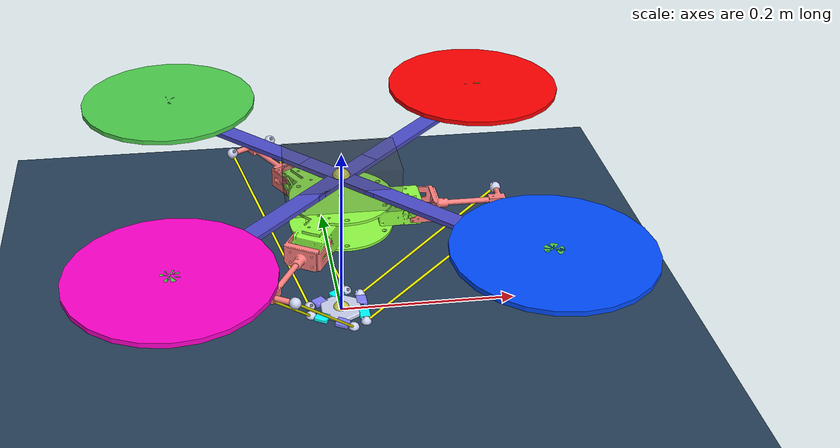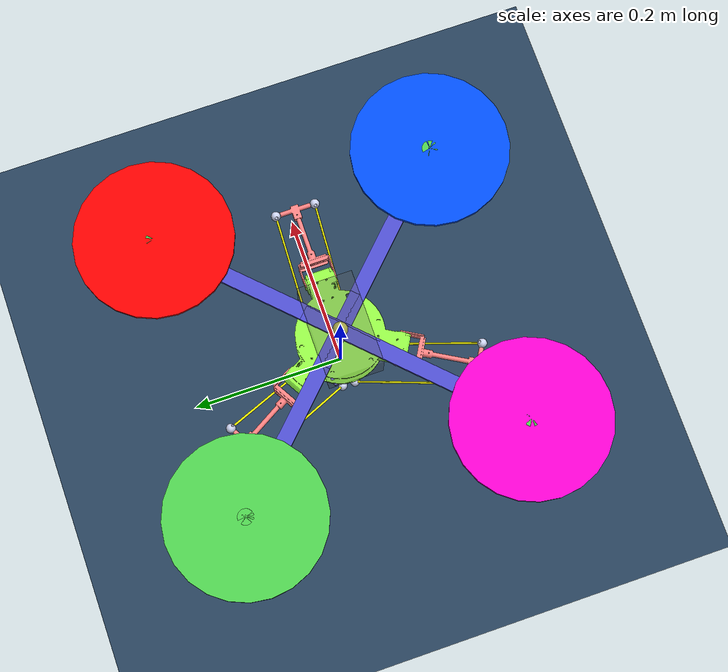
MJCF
<mujoco model="Delta">
  <compiler angle="radian" meshdir="assets"/>
  <option timestep="0.0001" gravity="0 0 -9.81" integrator="implicit" iterations="100" density="1" viscosity="1e-5"/>

  <default>
    <joint type="hinge" frictionloss="0.0001" damping='0.00005' limited="true" range="-3.14 3.14"/>
    <position ctrllimited="false" forcelimited="false"  kp="100" kv="10"/>
  </default>

  <asset>
    <mesh name="base_link" file="base_link.STL"/>
    <mesh name="motor_arm_link1" file="motor_arm_link1.STL"/>
    <mesh name="right_elbow_link1" file="right_elbow_link1.STL"/>
    <mesh name="right_arm_link1" file="right_arm_link1.STL"/>
    <mesh name="right_hinge_link1" file="right_hinge_link1.STL"/>
    <mesh name="right_end_link1" file="right_end_link1.STL"/>
    <mesh name="left_elbow_link1" file="left_elbow_link1.STL"/>
    <mesh name="left_arm_link1" file="left_arm_link1.STL"/>
    <mesh name="left_hinge_link1" file="left_hinge_link1.STL"/>
    <mesh name="left_end_link1" file="left_end_link1.STL"/>
    <mesh name="end_platform" file="end_platform.STL"/>
    <mesh name="motor_arm_link2" file="motor_arm_link2.STL"/>
    <mesh name="right_elbow_link2" file="right_elbow_link2.STL"/>
    <mesh name="right_arm_link2" file="right_arm_link2.STL"/>
    <mesh name="right_hinge_link2" file="right_hinge_link2.STL"/>
    <mesh name="right_end_link2" file="right_end_link2.STL"/>
    <mesh name="left_elbow_link2" file="left_elbow_link2.STL"/>
    <mesh name="left_arm_link2" file="left_arm_link2.STL"/>
    <mesh name="left_hinge_link2" file="left_hinge_link2.STL"/>
    <mesh name="left_end_link2" file="left_end_link2.STL"/>
    <mesh name="motor_arm_link3" file="motor_arm_link3.STL"/>
    <mesh name="right_elbow_link3" file="right_elbow_link3.STL"/>
    <mesh name="right_arm_link3" file="right_arm_link3.STL"/>
    <mesh name="right_hinge_link3" file="right_hinge_link3.STL"/>
    <mesh name="right_end_link3" file="right_end_link3.STL"/>
    <mesh name="left_elbow_link3" file="left_elbow_link3.STL"/>
    <mesh name="left_arm_link3" file="left_arm_link3.STL"/>
    <mesh name="left_hinge_link3" file="left_hinge_link3.STL"/>
    <mesh name="left_end_link3" file="left_end_link3.STL"/>
    <texture name="grid" type="2d" builtin="checker" rgb1=".1 .2 .3" rgb2=".2 .3 .4" width="100" height="100"/>
    <material name="grid" texture="grid" texrepeat="5 5" reflectance="0.0"/>
  </asset>

  <worldbody>
    <!-- This is the floor. -->
    <geom pos="0 0 0" size="0 0 0.05" type="plane" material="grid"/>

    <light pos="0 0 10."/>

    <body name="UAV_Delta_platform" pos="0 0 0.13271" quat = "1. 0. 0. 0">
      <freejoint />
      <body name="UAV_body" pos="0 0 0.04" quat = "1. 0. 0. 0">
        <site name="imu"/>
        <site name="UAV_center" pos=" 0 0 0"  size="0.01"  quat = "1.0 0.0 0.0 0." rgba="0.8 0.8 0.3 1"/>
        <geom name="core" type="box" pos="0 0 0" quat = "1. 0. 0. 0" size="0.06 0.035 0.025"  rgba="0.3 0.3 0.3 0.3" mass = ".2"/>
        <geom name="a00" type="box" pos=".071 0.071 0" size="0.15 0.01 0.0025"  quat = ".924 0.0 0.0 0.383" rgba="0.3 0.3 0.8 1" mass = ".025"/>
        <geom name="a10" type="box" pos=".071 -0.071 0" size="0.15 0.01 0.0025"  quat = ".383 0.0 0.0 0.924" rgba="0.3 0.3 0.8 1" mass = ".025"/>
        <geom name="a20" type="box" pos="-0.071 -0.071 0" size="0.15 0.01 0.0025"  quat = "-.383 0.0 0.0 0.924" rgba="0.3 0.3 0.8 1" mass = ".025"/>
        <geom name="a30" type="box" pos="-.071 0.071 0" size="0.15 0.01 0.0025"  quat = ".924 0.0 0.0 -0.383" rgba="0.3 0.3 0.8 1" mass = ".025"/>

        <site name="motor1" type="cylinder" pos=" 0.18  0.18 0.01"  size="0.01 0.0025"  quat = "1.0 0.0 0.0 0." rgba="0.3 0.8 0.3 1"/>
        <site name="motor2" type="cylinder" pos=" 0.18 -0.18 0.01"  size="0.01 0.0025"  quat = "1.0 0.0 0.0 0." rgba="0.3 0.8 0.3 1"/>
        <site name="motor3" type="cylinder" pos="-0.18 -0.18 0.01"  size="0.01 0.0025"  quat = "1.0 0.0 0.0 0." rgba="0.3 0.8 0.3 1"/>
        <site name="motor4" type="cylinder" pos="-0.18  0.18 0.01"  size="0.01 0.0025"  quat = "1.0 0.0 0.0 0." rgba="0.3 0.8 0.3 1"/>

        <!-- Thruster geometries for collisions since site's are excluded from collision checking -->
        <geom name="prop1" type="cylinder" pos=" 0.18  0.18  0.01" size="0.1 0.0025"  quat = "1.0 0.0 0.0 0." rgba="1 0 0 1" mass = ".025"/>
        <geom name="prop2" type="cylinder" pos=" 0.18  -0.18  0.01" size="0.1 0.0025"  quat = "1.0 0.0 0.0 0." rgba="0 0.3 1 1" mass = ".025"/>
        <geom name="prop3" type="cylinder" pos=" -0.18  -0.18  0.01" size="0.1 0.0025"  quat = "1.0 0.0 0.0 0." rgba="1 0 0.8 1" mass = ".025"/>
        <geom name="prop4" type="cylinder" pos=" -0.18  0.18  0.01" size="0.1 0.0025"  quat = "1.0 0.0 0.0 0." rgba="0.3 0.8 0.3 1" mass = ".025"/>
      </body>
      <camera name="track" pos="0 -1. .3" xyaxes="1 0 0 0 1 2" mode="track"/>
      <body name="Delta_base_body">
        <site name="Delta_base_center" pos=" 0 0 0"  size="0.01"  quat = "1.0 0.0 0.0 0." rgba="0.8 0.8 0.3 1"/>
        <geom type="mesh" contype="0" conaffinity="0" group="1" density="1" rgba="0.57255 1 0.27059 1" mesh="base_link"/>
        <geom type="mesh" rgba="0.57255 1 0.27059 1" mesh="base_link"/>
      </body>
      <body name="motor_arm_link1" pos="0.074577 0 0">
        <inertial pos="0.048659 4.3413e-11 -3.3963e-09" quat="0.5 0.5 -0.5 0.5" mass="0.0086736" diaginertia="1.9546e-06 1.2676e-06 1.1572e-06"/>
        <joint name="motor_arm_joint1" pos="0 0 0" axis="0 -1 0" damping='10'/>
        <geom type="mesh" contype="0" conaffinity="0" group="1" density="1" rgba="1 0.50196 0.50196 1" mesh="motor_arm_link1"/>
        <geom type="mesh" rgba="1 0.50196 0.50196 1" mesh="motor_arm_link1"/>
        <body name="right_elbow_link1" pos="0.1 0.026 0" quat="0.644891 0.290023 0.290025 0.644893">
          <inertial pos="-0.00098819 3.0494e-10 -4.6362e-09" quat="0.5 0.5 0.5 0.5" mass="0.00085837" diaginertia="2.0402e-08 1.8973e-08 1.153e-08"/>
          <joint name="right_elbow_joint1" pos="0 0 0" axis="-1 0 0"  />
          <geom type="mesh" contype="0" conaffinity="0" group="1" density="1" rgba="0.79216 0.81961 0.93333 1" mesh="right_elbow_link1"/>
          <geom type="mesh" rgba="0.79216 0.81961 0.93333 1" mesh="right_elbow_link1"/>
          <body name="right_arm_link1">
            <inertial pos="-8.6914e-09 0 -0.1" quat="0.707107 0 0 0.707107" mass="0.0075206" diaginertia="4.0858e-06 4.085e-06 2.4932e-09"/>
            <joint name="right_arm_joint1" pos="0 0 0" axis="0 -1 0"  />
            <geom type="mesh" contype="0" conaffinity="0" group="1" density="1" rgba="1 1 0 1" mesh="right_arm_link1"/>
            <geom type="mesh" rgba="1 1 0 1" mesh="right_arm_link1"/>
            <body name="right_hinge_link1" pos="0 0 -0.2">
              <inertial pos="-0.00098819 -3.0494e-10 4.6362e-09" quat="0.5 0.5 0.5 0.5" mass="0.00085837" diaginertia="2.0402e-08 1.8973e-08 1.153e-08"/>
              <joint name="right_hinge_joint1" pos="0 0 0" axis="0 1 0"  />
              <geom type="mesh" contype="0" conaffinity="0" group="1" density="1" rgba="0.79216 0.81961 0.93333 1" mesh="right_hinge_link1"/>
              <geom type="mesh" rgba="0.79216 0.81961 0.93333 1" mesh="right_hinge_link1"/>
              <body name="right_end_link1">
                <inertial pos="-0.013549 4.0775e-05 -4.5973e-05" quat="0.306307 0.63732 0.273553 0.65205" mass="0.0012596" diaginertia="3.85901e-08 2.95879e-08 2.3009e-08"/>
                <joint name="right_end_joint1" pos="0 0 0" axis="-1 0 0"  />
                <geom type="mesh" contype="0" conaffinity="0" group="1" density="1" rgba="0.50196 0.50196 1 1" mesh="right_end_link1"/>
                <geom type="mesh" rgba="0.50196 0.50196 1 1" mesh="right_end_link1"/>
              </body>
            </body>
          </body>
        </body>
        <body name="left_elbow_link1" pos="0.1 -0.026 0" quat="0.644891 0.290023 0.290025 0.644893">
          <inertial pos="0.00098819 3.0494e-10 4.6362e-09" quat="0.5 0.5 0.5 0.5" mass="0.00085837" diaginertia="2.0402e-08 1.8973e-08 1.153e-08"/>
          <joint name="left_elbow_joint1" pos="0 0 0" axis="1 0 0"/>
          <geom type="mesh" contype="0" conaffinity="0" group="1" density="1" rgba="0.79216 0.81961 0.93333 1" mesh="left_elbow_link1"/>
          <geom type="mesh" rgba="0.79216 0.81961 0.93333 1" mesh="left_elbow_link1"/>
          <body name="left_arm_link1">
            <inertial pos="-8.6914e-09 0 -0.1" quat="0.707107 0 0 0.707107" mass="0.0075206" diaginertia="4.0858e-06 4.085e-06 2.4932e-09"/>
            <joint name="left_arm_joint1" pos="0 0 0" axis="0 -1 0"/>
            <geom type="mesh" contype="0" conaffinity="0" group="1" density="1" rgba="1 1 0 1" mesh="left_arm_link1"/>
            <geom type="mesh" rgba="1 1 0 1" mesh="left_arm_link1"/>
            <body name="left_hinge_link1" pos="0 0 -0.2">
              <inertial pos="0.00098819 3.0494e-10 4.6362e-09" quat="0.5 0.5 0.5 0.5" mass="0.00085837" diaginertia="2.0402e-08 1.8973e-08 1.153e-08"/>
              <joint name="left_hinge_joint1" pos="0 0 0" axis="0 -1 0"/>
              <geom type="mesh" contype="0" conaffinity="0" group="1" density="1" rgba="0.79216 0.81961 0.93333 1" mesh="left_hinge_link1"/>
              <geom type="mesh" rgba="0.79216 0.81961 0.93333 1" mesh="left_hinge_link1"/>
              <body name="left_end_link1">
                <inertial pos="0.013549 4.0775e-05 -4.5973e-05" quat="0.273553 0.65205 0.306307 0.63732" mass="0.0012596" diaginertia="3.85901e-08 2.95879e-08 2.3009e-08"/>
                <joint name="left_end_joint1" pos="0 0 0" axis="1 0 0"/>
                <geom type="mesh" contype="0" conaffinity="0" group="1" density="1" rgba="0 1 1 1" mesh="left_end_link1"/>
                <geom type="mesh" rgba="0 1 1 1" mesh="left_end_link1"/>
              </body>
            </body>
          </body>
        </body>
      </body>
      <body name="motor_arm_link2" pos="-0.037289 0.064586 0" quat="0.499998 0 0 0.866027">
        <inertial pos="0.048659 -1.1526e-10 -3.1381e-09" quat="0.5 0.5 -0.5 0.5" mass="0.0086736" diaginertia="1.9546e-06 1.2676e-06 1.1572e-06"/>
        <joint name="motor_arm_joint2" pos="0 0 0" axis="0 -1 0" damping='10'/>
        <geom type="mesh" contype="0" conaffinity="0" group="1" density="1" rgba="1 0.50196 0.50196 1" mesh="motor_arm_link2"/>
        <geom type="mesh" rgba="1 0.50196 0.50196 1" mesh="motor_arm_link2"/>
        <body name="right_elbow_link2" pos="0.1 0.026 0" quat="0.644891 0.290023 0.290025 0.644893">
          <inertial pos="-0.00098819 1.6333e-09 -2.2058e-09" quat="0.5 0.5 0.5 0.5" mass="0.00085837" diaginertia="2.0402e-08 1.8973e-08 1.153e-08"/>
          <joint name="right_elbow_joint2" pos="0 0 0" axis="-1 0 0"/>
          <geom type="mesh" contype="0" conaffinity="0" group="1" density="1" rgba="0.79216 0.81961 0.93333 1" mesh="right_elbow_link2"/>
          <geom type="mesh" rgba="0.79216 0.81961 0.93333 1" mesh="right_elbow_link2"/>
          <body name="right_arm_link2">
            <inertial pos="-8.6914e-09 0 -0.1" quat="0.707107 0 0 0.707107" mass="0.0075206" diaginertia="4.0858e-06 4.085e-06 2.4932e-09"/>
            <joint name="right_arm_joint2" pos="0 0 0" axis="0 -1 0"/>
            <geom type="mesh" contype="0" conaffinity="0" group="1" density="1" rgba="1 1 0 1" mesh="right_arm_link2"/>
            <geom type="mesh" rgba="1 1 0 1" mesh="right_arm_link2"/>
            <body name="right_hinge_link2" pos="0 0 -0.2">
              <inertial pos="-0.00098819 9.8853e-10 7.0548e-09" quat="0.5 0.5 0.5 0.5" mass="0.00085837" diaginertia="2.0402e-08 1.8973e-08 1.153e-08"/>
              <joint name="right_hinge_joint2" pos="0 0 0" axis="0 1 0"/>
              <geom type="mesh" contype="0" conaffinity="0" group="1" density="1" rgba="0.79216 0.81961 0.93333 1" mesh="right_hinge_link2"/>
              <geom type="mesh" rgba="0.79216 0.81961 0.93333 1" mesh="right_hinge_link2"/>
              <body name="right_end_link2">
                <inertial pos="-0.013549 4.0775e-05 -4.5973e-05" quat="0.306307 0.63732 0.273553 0.65205" mass="0.0012596" diaginertia="3.85901e-08 2.95879e-08 2.3009e-08"/>
                <joint name="right_end_joint2" pos="0 0 0" axis="-1 0 0"/>
                <geom type="mesh" contype="0" conaffinity="0" group="1" density="1" rgba="0.50196 0.50196 1 1" mesh="right_end_link2"/>
                <geom type="mesh" rgba="0.50196 0.50196 1 1" mesh="right_end_link2"/>
              </body>
            </body>
          </body>
        </body>
        <body name="left_elbow_link2" pos="0.1 -0.026 0" quat="0.644891 0.290023 0.290025 0.644893">
          <inertial pos="0.00098819 -9.7302e-10 2.2002e-09" quat="0.5 0.5 0.5 0.5" mass="0.00085837" diaginertia="2.0402e-08 1.8973e-08 1.153e-08"/>
          <joint name="left_elbow_joint2" pos="0 0 0" axis="1 0 0"/>
          <geom type="mesh" contype="0" conaffinity="0" group="1" density="1" rgba="0.79216 0.81961 0.93333 1" mesh="left_elbow_link2"/>
          <geom type="mesh" rgba="0.79216 0.81961 0.93333 1" mesh="left_elbow_link2"/>
          <body name="left_arm_link2">
            <inertial pos="-8.6914e-09 0 -0.1" quat="0.707107 0 0 0.707107" mass="0.0075206" diaginertia="4.0858e-06 4.085e-06 2.4932e-09"/>
            <joint name="left_arm_joint2" pos="0 0 0" axis="0 -1 0"/>
            <geom type="mesh" contype="0" conaffinity="0" group="1" density="1" rgba="1 1 0 1" mesh="left_arm_link2"/>
            <geom type="mesh" rgba="1 1 0 1" mesh="left_arm_link2"/>
            <body name="left_hinge_link2" pos="0 0 -0.2">
              <inertial pos="0.00098819 -9.7302e-10 2.2002e-09" quat="0.5 0.5 0.5 0.5" mass="0.00085837" diaginertia="2.0402e-08 1.8973e-08 1.153e-08"/>
              <joint name="left_hinge_joint2" pos="0 0 0" axis="0 -1 0"/>
              <geom type="mesh" contype="0" conaffinity="0" group="1" density="1" rgba="0.79216 0.81961 0.93333 1" mesh="left_hinge_link2"/>
              <geom type="mesh" rgba="0.79216 0.81961 0.93333 1" mesh="left_hinge_link2"/>
              <body name="left_end_link2">
                <inertial pos="0.013549 4.0775e-05 -4.5973e-05" quat="0.273553 0.65205 0.306307 0.63732" mass="0.0012596" diaginertia="3.85901e-08 2.95879e-08 2.3009e-08"/>
                <joint name="left_end_joint2" pos="0 0 0" axis="1 0 0"/>
                <geom type="mesh" contype="0" conaffinity="0" group="1" density="1" rgba="0 1 1 1" mesh="left_end_link2"/>
                <geom type="mesh" rgba="0 1 1 1" mesh="left_end_link2"/>
              </body>
            </body>
          </body>
        </body>
      </body>
      <body name="motor_arm_link3" pos="-0.037289 -0.064586 0" quat="0.499998 0 0 -0.866027">
        <inertial pos="0.048659 1.1069e-10 -3.4522e-09" quat="0.5 0.5 -0.5 0.5" mass="0.0086736" diaginertia="1.9546e-06 1.2676e-06 1.1572e-06"/>
        <joint name="motor_arm_joint3" pos="0 0 0" axis="0 -1 0" damping='10'/>
        <geom type="mesh" contype="0" conaffinity="0" group="1" density="1" rgba="1 0.50196 0.50196 1" mesh="motor_arm_link3"/>
        <geom type="mesh" rgba="1 0.50196 0.50196 1" mesh="motor_arm_link3"/>
        <body name="right_elbow_link3" pos="0.1 0.026 0" quat="0.644891 0.290023 0.290025 0.644893">
          <inertial pos="-0.00098819 -9.8853e-10 -7.0473e-09" quat="0.5 0.5 0.5 0.5" mass="0.00085837" diaginertia="2.0402e-08 1.8973e-08 1.153e-08"/>
          <joint name="right_elbow_joint3" pos="0 0 0" axis="-1 0 0"/>
          <geom type="mesh" contype="0" conaffinity="0" group="1" density="1" rgba="0.79216 0.81961 0.93333 1" mesh="right_elbow_link3"/>
          <geom type="mesh" rgba="0.79216 0.81961 0.93333 1" mesh="right_elbow_link3"/>
          <body name="right_arm_link3">
            <inertial pos="-8.6914e-09 0 -0.1" quat="0.707107 0 0 0.707107" mass="0.0075206" diaginertia="4.0858e-06 4.085e-06 2.4932e-09"/>
            <joint name="right_arm_joint3" pos="0 0 0" axis="0 -1 0"/>
            <geom type="mesh" contype="0" conaffinity="0" group="1" density="1" rgba="1 1 0 1" mesh="right_arm_link3"/>
            <geom type="mesh" rgba="1 1 0 1" mesh="right_arm_link3"/>
            <body name="right_hinge_link3" pos="0 0 -0.2">
              <inertial pos="-0.0009882 -1.6333e-09 2.1981e-09" quat="0.5 0.5 0.5 0.5" mass="0.00085837" diaginertia="2.0402e-08 1.8973e-08 1.153e-08"/>
              <joint name="right_hinge_joint3" pos="0 0 0" axis="0 1 0"/>
              <geom type="mesh" contype="0" conaffinity="0" group="1" density="1" rgba="0.79216 0.81961 0.93333 1" mesh="right_hinge_link3"/>
              <geom type="mesh" rgba="0.79216 0.81961 0.93333 1" mesh="right_hinge_link3"/>
              <body name="right_end_link3">
                <inertial pos="-0.013549 4.0775e-05 -4.5973e-05" quat="0.306307 0.63732 0.273553 0.65205" mass="0.0012596" diaginertia="3.85901e-08 2.95879e-08 2.3009e-08"/>
                <joint name="right_end_joint3" pos="0 0 0" axis="-1 0 0"/>
                <geom type="mesh" contype="0" conaffinity="0" group="1" density="1" rgba="0.50196 0.50196 1 1" mesh="right_end_link3"/>
                <geom type="mesh" rgba="0.50196 0.50196 1 1" mesh="right_end_link3"/>
              </body>
            </body>
          </body>
        </body>
        <body name="left_elbow_link3" pos="0.1 -0.026 0" quat="0.644891 0.290023 0.290025 0.644893">
          <inertial pos="0.00098819 1.6483e-09 7.0573e-09" quat="0.5 0.5 0.5 0.5" mass="0.00085837" diaginertia="2.0402e-08 1.8973e-08 1.153e-08"/>
          <joint name="left_elbow_joint3" pos="0 0 0" axis="1 0 0"/>
          <geom type="mesh" contype="0" conaffinity="0" group="1" density="1" rgba="0.79216 0.81961 0.93333 1" mesh="left_elbow_link3"/>
          <geom type="mesh" rgba="0.79216 0.81961 0.93333 1" mesh="left_elbow_link3"/>
          <body name="left_arm_link3">
            <inertial pos="-8.6914e-09 0 -0.1" quat="0.707107 0 0 0.707107" mass="0.0075206" diaginertia="4.0858e-06 4.085e-06 2.4932e-09"/>
            <joint name="left_arm_joint3" pos="0 0 0" axis="0 -1 0"/>
            <geom type="mesh" contype="0" conaffinity="0" group="1" density="1" rgba="1 1 0 1" mesh="left_arm_link3"/>
            <geom type="mesh" rgba="1 1 0 1" mesh="left_arm_link3"/>
            <body name="left_hinge_link3" pos="0 0 -0.2">
              <inertial pos="0.00098819 1.6483e-09 7.0573e-09" quat="0.5 0.5 0.5 0.5" mass="0.00085837" diaginertia="2.0402e-08 1.8973e-08 1.153e-08"/>
              <joint name="left_hinge_joint3" pos="0 0 0" axis="0 -1 0"/>
              <geom type="mesh" contype="0" conaffinity="0" group="1" density="1" rgba="0.79216 0.81961 0.93333 1" mesh="left_hinge_link3"/>
              <geom type="mesh" rgba="0.79216 0.81961 0.93333 1" mesh="left_hinge_link3"/>
              <body name="left_end_link3">
                <inertial pos="0.013549 4.0775e-05 -4.5973e-05" quat="0.273553 0.65205 0.306307 0.63732" mass="0.0012596" diaginertia="3.85901e-08 2.95879e-08 2.3009e-08"/>
                <joint name="left_end_joint3" pos="0 0 0" axis="1 0 0"/>
                <geom type="mesh" contype="0" conaffinity="0" group="1" density="1" rgba="0 1 1 1" mesh="left_end_link3"/>
                <geom type="mesh" rgba="0 1 1 1" mesh="left_end_link3"/>
              </body>
            </body>
          </body>
        </body>
      </body>
    </body>

    <body name="end_platform" pos="0 0 0" >
      <freejoint />
      <site name="end_platform_center" pos=" 0 0 0"  size="0.01"  quat = "1.0 0.0 0.0 0." rgba="0.8 0.8 0.3 1"/>
      <inertial pos="0 0 0" quat="1 0 0 0" mass="0.0125206" diaginertia="4.0858e-06 4.085e-06 2.4932e-09"/>
      <geom pos="0 0 0" quat="1 0 0 0" type="mesh" rgba="0.79216 0.81961 0.93333 1" mesh="end_platform"/>
    </body>

  </worldbody>

  <contact>
      <exclude name="e0" body1="right_end_link1" body2="end_platform" />
      <exclude name="e1" body1="left_end_link1" body2="end_platform" />
      <exclude name="e2" body1="right_end_link2" body2="end_platform" />
      <exclude name="e3" body1="left_end_link2" body2="end_platform" />
      <exclude name="e4" body1="right_end_link3" body2="end_platform" />
      <exclude name="e5" body1="left_end_link3" body2="end_platform" />
  </contact>

  <equality>
    <weld name="c1" body1="right_end_link1" body2="end_platform" solref="0.0001 0.99" solimp="0.99 0.999 0.0001" torquescale="1" />
    <weld name="c2" body1="left_end_link1" body2="end_platform" solref="0.0001 0.99" solimp="0.99 0.999 0.0001" torquescale="1" />
    <weld name="c3" body1="right_end_link2" body2="end_platform" solref="0.0001 0.99" solimp="0.99 0.999 0.0001" torquescale="1" />
    <weld name="c4" body1="left_end_link2" body2="end_platform" solref="0.0001 0.99" solimp="0.99 0.999 0.0001" torquescale="1" />
    <weld name="c5" body1="right_end_link3" body2="end_platform" solref="0.0001 0.99" solimp="0.99 0.999 0.0001" torquescale="1" />
    <weld name="c6" body1="left_end_link3" body2="end_platform" solref="0.0001 0.99" solimp="0.99 0.999 0.0001" torquescale="1" />

  </equality>

  <actuator>

    <motor name="forcex" gear="1 0 0 0 0 0" site="UAV_center"/>
    <motor name="forcey" gear="0 1 0 0 0 0" site="UAV_center"/>
    <motor name="forcez" gear="0 0 1 0 0 0" site="UAV_center"/>
    <motor name="Mx" gear="0 0 0 1 0 0" site="UAV_center"/>
    <motor name="My" gear="0 0 0 0 1 0" site="UAV_center"/>
    <motor name="Mz" gear="0 0 0 0 0 1" site="UAV_center"/>

    <motor name="rotor0" gear="0 0 1 0. 0. -1" site="motor1"/>
    <motor name="rotor1" gear="0 0 1 0. 0.  1" site="motor2"/>
    <motor name="rotor2" gear="0 0 1 0. 0. -1" site="motor3"/>
    <motor name="rotor3" gear="0 0 1 0. 0.  1" site="motor4"/>

    <position name="armmotor1" joint="motor_arm_joint1" kp="100" kv="10" />
    <position name="armmotor2" joint="motor_arm_joint2" kp="100" kv="10" />
    <position name="armmotor3" joint="motor_arm_joint3" kp="100" kv="10" />
    <!-- ctrllimited="true" ctrlrange="-1.8 1" -->

  </actuator>

  <sensor>
    <gyro name="body_gyro" site="imu"/>
    <accelerometer name="body_linacc" site="imu"/>
    <framequat name="body_quat" objtype="site" objname="imu"/>
    <!-- 末端平台位置传感器 -->
  </sensor>
  <visual>
    <global offwidth="1920" offheight="1680"/>
  </visual>

</mujoco>
